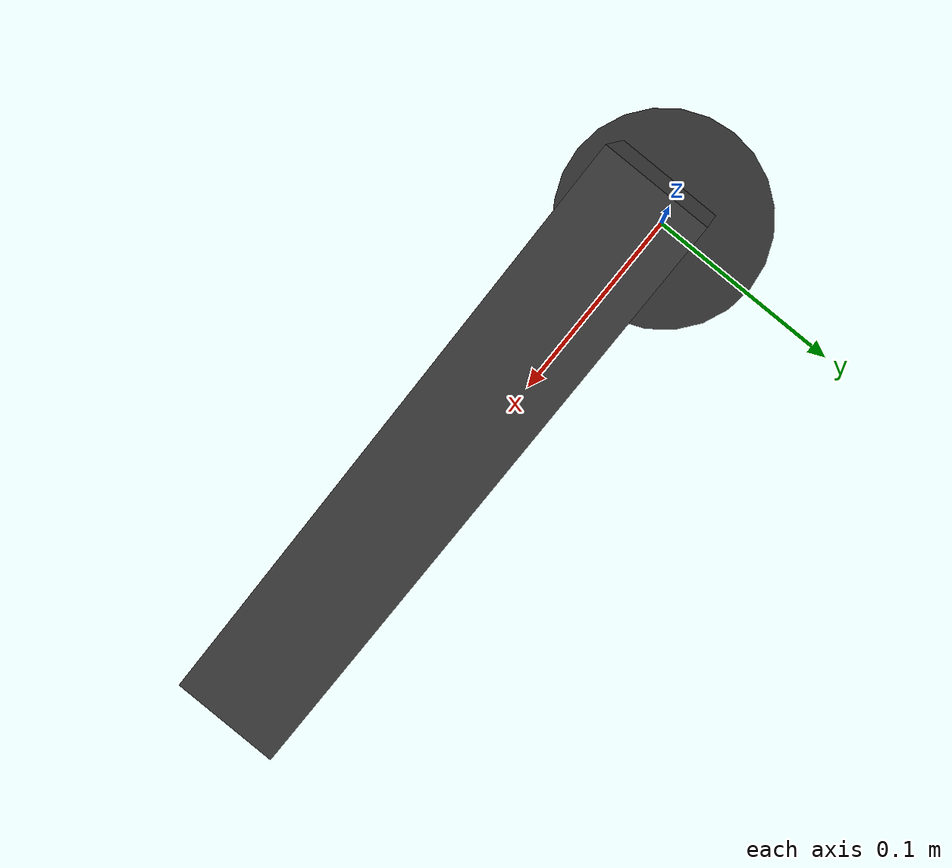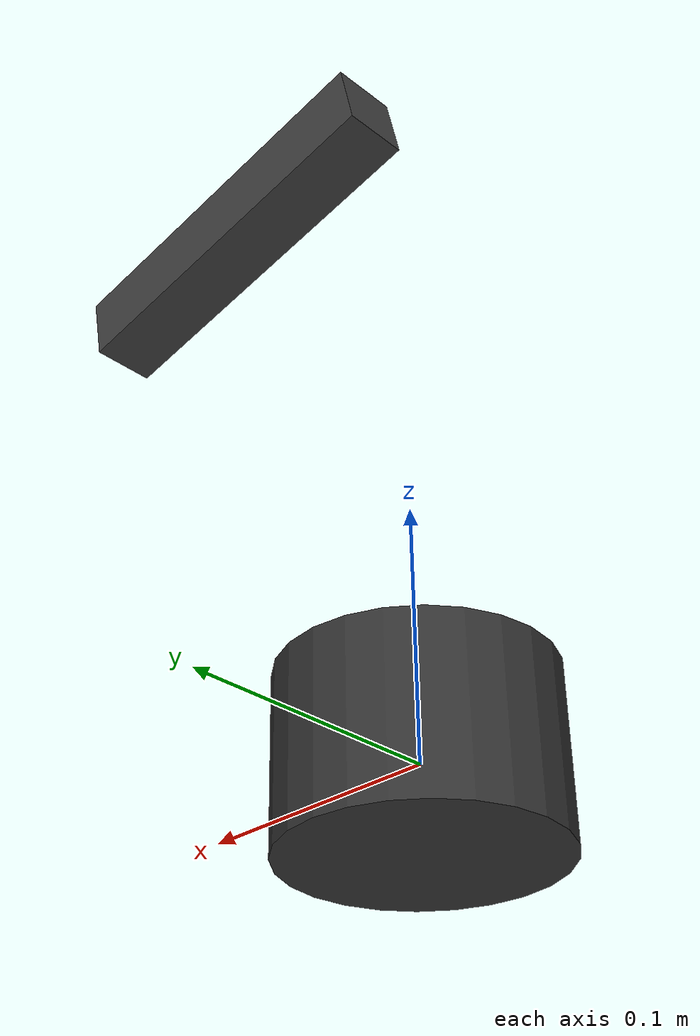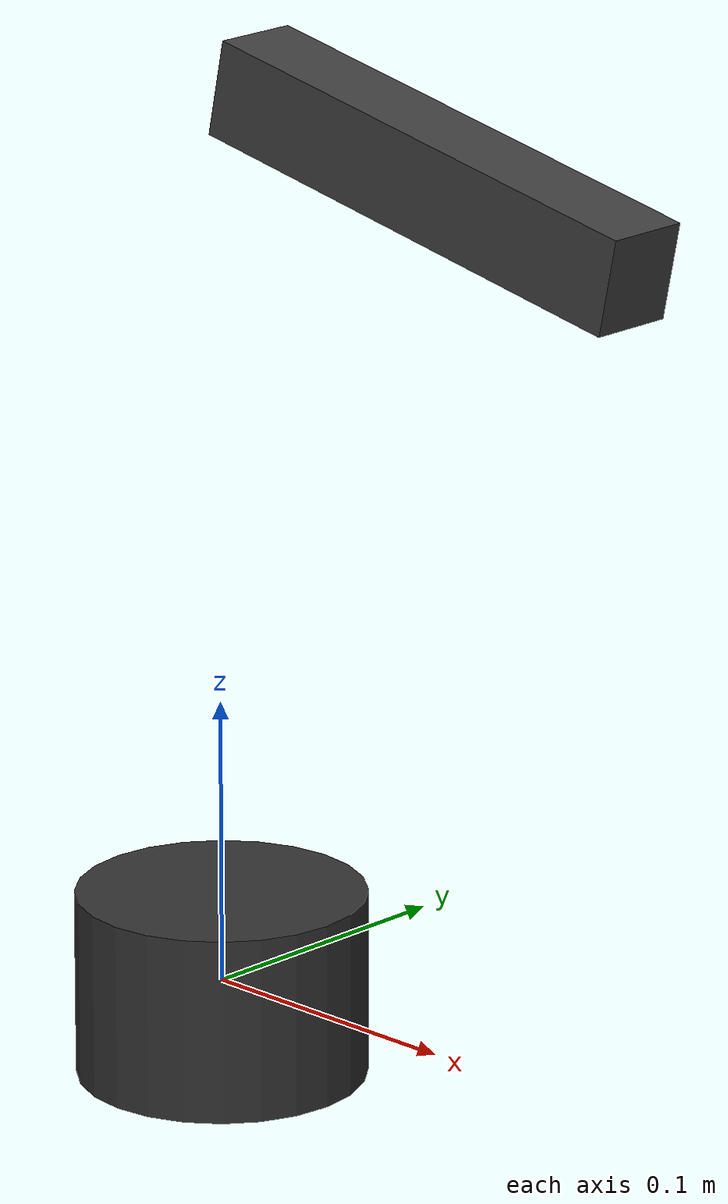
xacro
<?xml version="1.0"?>
<robot xmlns:xacro="http://www.ros.org/wiki/xacro" name="lynxmotion_arm">

  <!-- Robot Parameters -->
  <xacro:property name="base_height" value="0.065" />
  <xacro:property name="shoulder_length" value="0.105" />
  <xacro:property name="forearm_length" value="0.100" />
  <xacro:property name="wrist_length" value="0.060" />

  <!-- Base Link -->
  <link name="base_link">
    <visual>
      <geometry>
        <cylinder length="${base_height}" radius="0.05"/>
      </geometry>
      <material name="black">
        <color rgba="0.2 0.2 0.2 1.0"/>
      </material>
    </visual>
  </link>

  <!-- ZED Camera Link (mounted above the robot base) -->
  <link name="zed_base_link">
    <visual>
      <geometry>
        <box size="0.175 0.030 0.033"/>
      </geometry>
      <material name="zed_mat">
        <color rgba="0.25 0.25 0.25 1.0"/>
      </material>
    </visual>
  </link>

  <!-- ZED Left Camera Frame -->
  <link name="zed_left_camera_frame"/>

  <!-- Joint from base to ZED camera -->
  <joint name="base_to_zed" type="fixed">
    <parent link="base_link"/>
    <child link="zed_base_link"/>
    <!-- Camera positioned 30cm above and 10cm forward of robot base -->
    <origin xyz="0.10 0.0 0.30" rpy="0 0.2 0"/>
  </joint>

  <!-- Joint from ZED base to left camera frame -->
  <joint name="zed_base_to_left_cam" type="fixed">
    <parent link="zed_base_link"/>
    <child link="zed_left_camera_frame"/>
    <!-- Left camera offset -->
    <origin xyz="0.0 0.06 0.0" rpy="0 0 0"/>
  </joint>

  <!-- Arm Links (simplified for coordinate frame reference) -->
  <link name="shoulder_link"/>
  <link name="elbow_link"/>
  <link name="wrist_link"/>
  <link name="gripper_link"/>

  <!-- Arm Joints (for reference) -->
  <joint name="base_to_shoulder" type="revolute">
    <parent link="base_link"/>
    <child link="shoulder_link"/>
    <origin xyz="0.0 0.0 ${base_height}" rpy="0 0 0"/>
    <axis xyz="0 0 1"/>
    <limit lower="-1.57" upper="1.57" effort="10" velocity="1.0"/>
  </joint>

  <joint name="shoulder_to_elbow" type="revolute">
    <parent link="shoulder_link"/>
    <child link="elbow_link"/>
    <origin xyz="${shoulder_length} 0.0 0.0" rpy="0 0 0"/>
    <axis xyz="0 1 0"/>
    <limit lower="0" upper="2.36" effort="10" velocity="1.0"/>
  </joint>

  <joint name="elbow_to_wrist" type="revolute">
    <parent link="elbow_link"/>
    <child link="wrist_link"/>
    <origin xyz="${forearm_length} 0.0 0.0" rpy="0 0 0"/>
    <axis xyz="0 1 0"/>
    <limit lower="-2.36" upper="2.36" effort="10" velocity="1.0"/>
  </joint>

  <joint name="wrist_to_gripper" type="revolute">
    <parent link="wrist_link"/>
    <child link="gripper_link"/>
    <origin xyz="${wrist_length} 0.0 0.0" rpy="0 0 0"/>
    <axis xyz="0 1 0"/>
    <limit lower="-1.57" upper="1.57" effort="5" velocity="1.0"/>
  </joint>

</robot>
